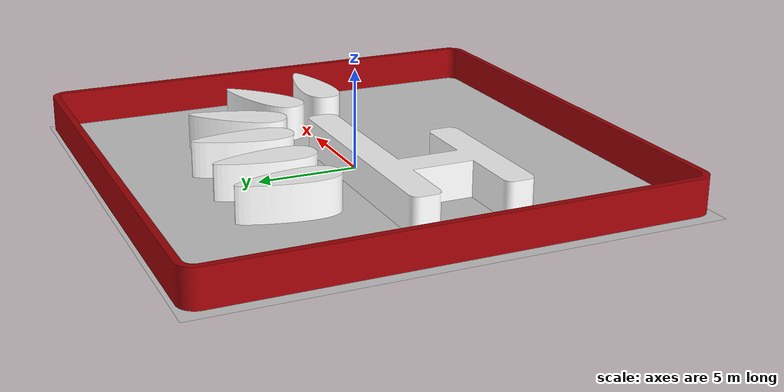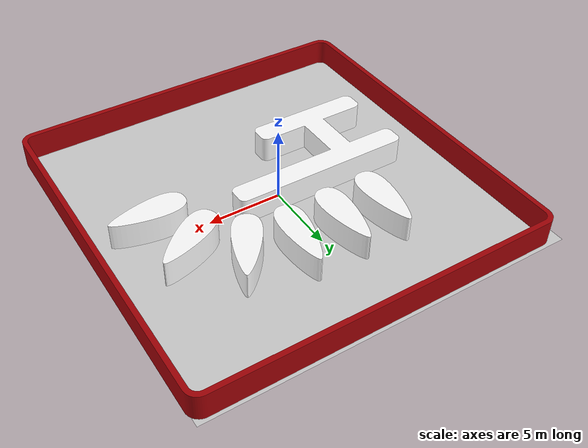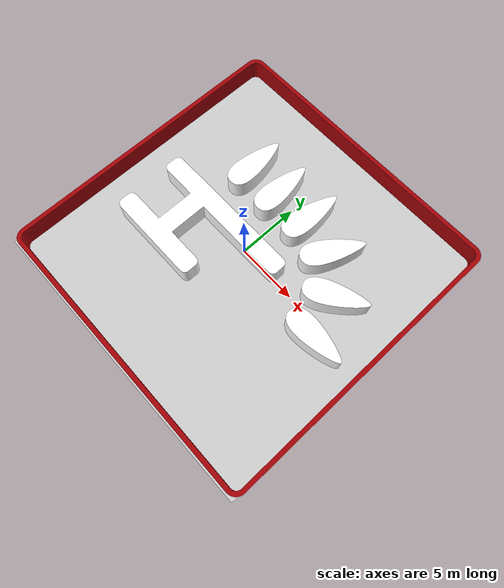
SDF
<?xml version="1.0"?>

<sdf version="1.6">
  <world name="husarion_world">
    <physics name="1ms" type="ignored">
      <max_step_size>0.001</max_step_size>
      <real_time_factor>1.0</real_time_factor>
    </physics>

    <plugin filename="ignition-gazebo-contact-system" name="gz::sim::systems::Contact" />
    <plugin filename="ignition-gazebo-physics-system" name="gz::sim::systems::Physics" />
    <plugin filename="ignition-gazebo-scene-broadcaster-system"
      name="gz::sim::systems::SceneBroadcaster" />
    <plugin filename="ignition-gazebo-sensors-system" name="gz::sim::systems::Sensors">
      <render_engine>ogre2</render_engine>
    </plugin>
    <plugin filename="ignition-gazebo-user-commands-system" name="gz::sim::systems::UserCommands" />
    <plugin filename="gz-sim-apply-link-wrench-system" name="gz::sim::systems::ApplyLinkWrench" />
    <magnetic_field>6e-06 2.3e-05 -4.2e-05</magnetic_field>

    <spherical_coordinates>
      <surface_model>EARTH_WGS84</surface_model>
      <world_frame_orientation>ENU</world_frame_orientation>
      <latitude_deg>50.088384</latitude_deg>
      <longitude_deg>19.939128</longitude_deg>
      <elevation>0</elevation>
      <heading_deg>0</heading_deg>
    </spherical_coordinates>

    <model name="husarion_world">
      <static>true</static>
      <link name="mesh">
        <pose>13.0 16.0 0 0 0 -1.57</pose>
        <visual name="visual">
          <geometry>
            <mesh>
              <uri>model://HusarionLogo/meshes/husarion_logo.dae</uri>
              <scale>6.0 6.0 6.0</scale>
            </mesh>
          </geometry>
        </visual>
        <collision name="visual">
          <geometry>
            <mesh>
              <uri>model://HusarionLogo/meshes/husarion_logo.dae</uri>
              <scale>6.0 6.0 6.0</scale>
            </mesh>
          </geometry>
        </collision>
      </link>

      <link name="map">
        <light type="directional" name="sun">
          <cast_shadows>true</cast_shadows>
          <pose>0 0 10 0 0 0</pose>
          <diffuse>0.8 0.8 0.8 1</diffuse>
          <specular>0.2 0.2 0.2 1</specular>
          <attenuation>
            <range>1000</range>
            <constant>0.9</constant>
            <linear>0.01</linear>
            <quadratic>0.001</quadratic>
          </attenuation>
          <direction>-0.5 0.1 -0.9</direction>
        </light>
        <collision name="collision">
          <geometry>
            <plane>
              <normal>0 0 1</normal>
              <size>25 25</size>
            </plane>
          </geometry>
        </collision>
        <visual name="visual">
          <geometry>
            <plane>
              <normal>0 0 1</normal>
              <size>25 25</size>
            </plane>
          </geometry>
          <material>
            <ambient>0.8 0.8 0.8 1</ambient>
            <diffuse>0.8 0.8 0.8 1</diffuse>
            <specular>0.8 0.8 0.8 1</specular>
          </material>
        </visual>
      </link>
    </model>

  </world>
</sdf>
